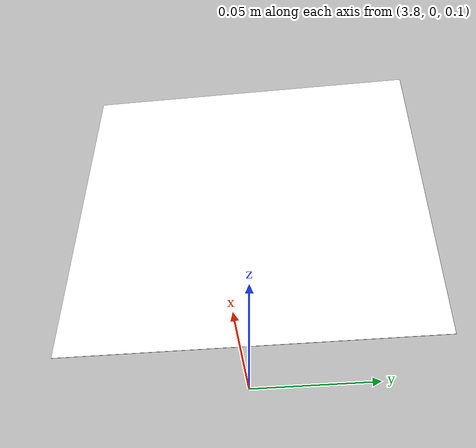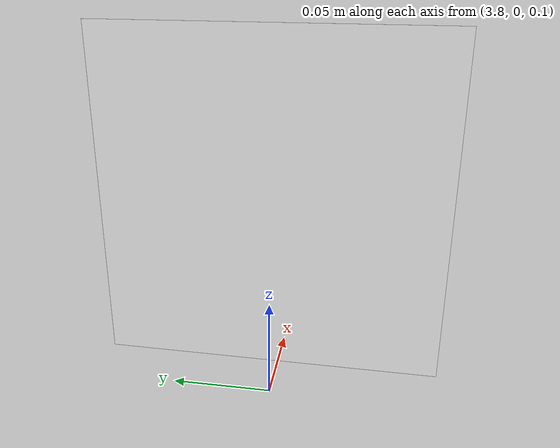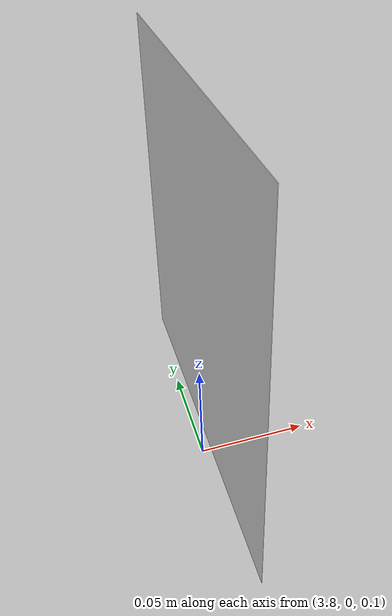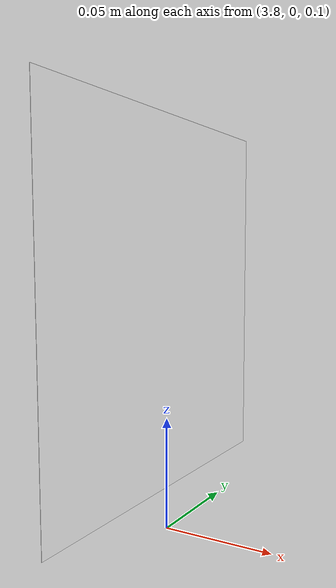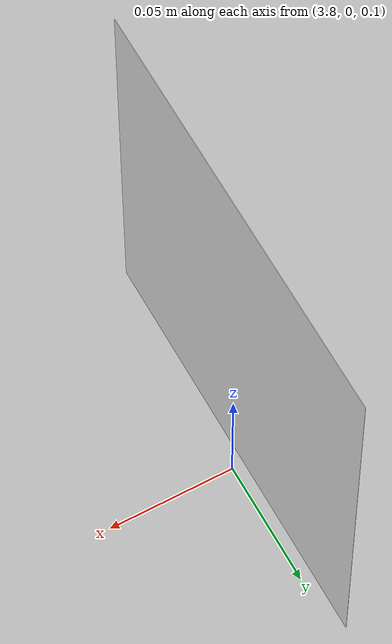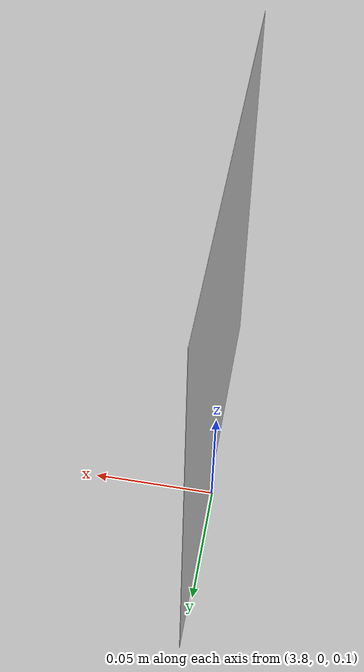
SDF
<?xml version="1.0"?>
<sdf version="1.9">
  <model name="apriltag_36h11_0">
    <static>true</static>
    <link name="tag_link">
      <!-- Lift slightly to avoid z-fighting if placed on the floor -->
      <pose> 3.8 0 0.2 1.5708 0 -1.5708</pose>
      <collision name="col">
        <geometry>
          <plane>
            <normal>0 0 1</normal>
            <size>0.162 0.162</size>
          </plane>
        </geometry>
      </collision>

      <visual name="vis">
        <geometry>
          <plane>
            <normal>0 0 1</normal>
            <size>0.162 0.162</size>
          </plane>
        </geometry>

        <material>
          <pbr>
            <metal>
              <albedo_map>materials/textures/tag36h11_0.png</albedo_map>
              <roughness>1.0</roughness>
              <metalness>0.0</metalness>
            </metal>
          </pbr>
          <ambient>1 1 1 1</ambient>
          <diffuse>1 1 1 1</diffuse>
          <specular>0 0 0 1</specular>
          <emissive>1 1 1 1</emissive>
        </material>

        <cast_shadows>false</cast_shadows>
      </visual>
    </link>
  </model>
</sdf>
